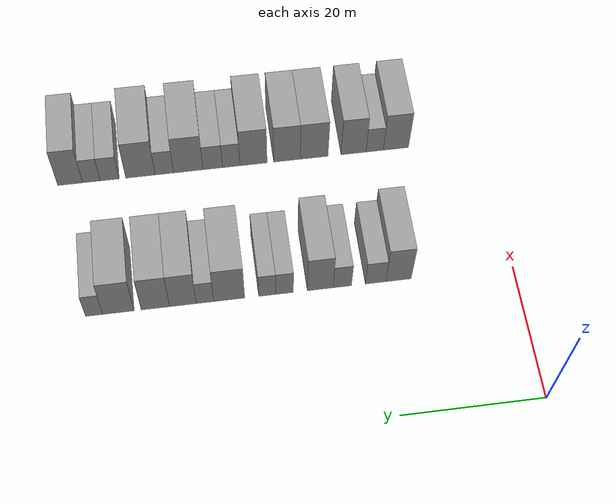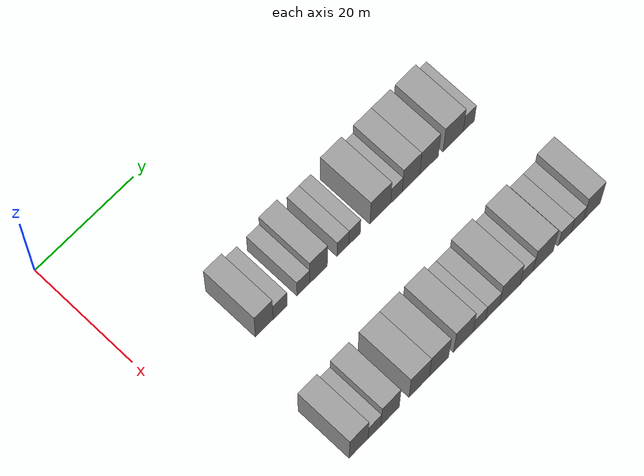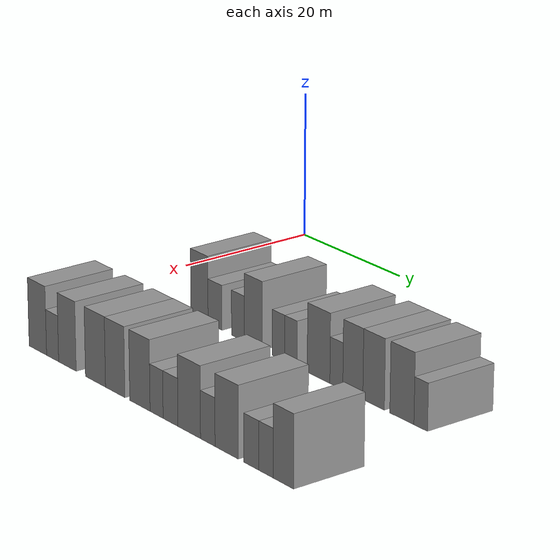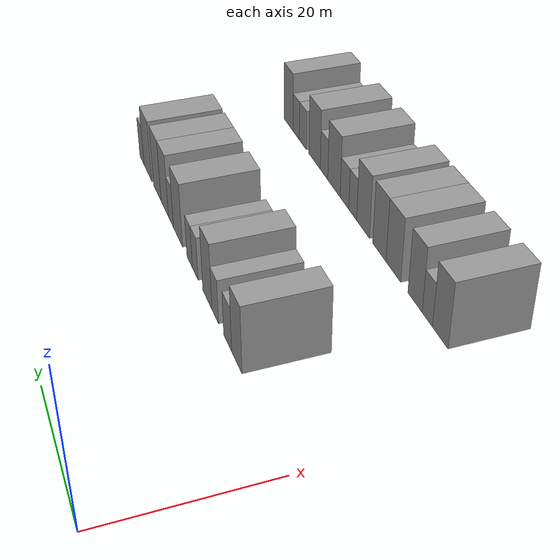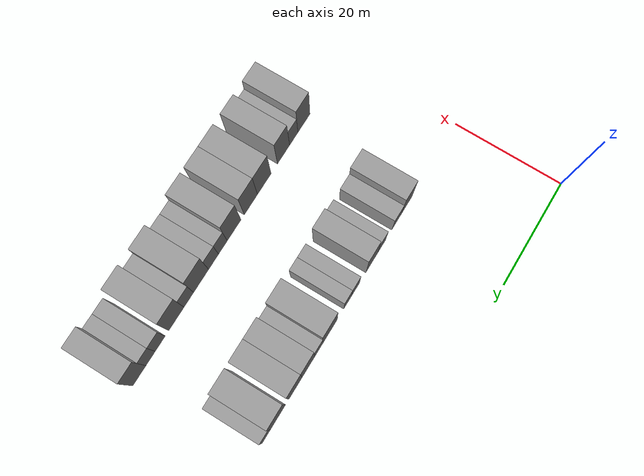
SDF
<sdf version="1.6">
 <world name="default">
  <model name="building_53">
   <static>1</static>
   <pose>25.0000 16.6781 0 0.000000 0.000000 0.000000</pose>
   <link name="link">
    <pose>0 0 4.50 0 0 0</pose>
    <collision name="collision"><geometry><box><size>10.0000 3.6595 9.0000</size></box></geometry></collision>
    <visual name="visual">
     <cast_shadows>0</cast_shadows>
     <geometry><box><size>10.0000 3.6595 9.0000</size></box></geometry>
     <material>
      <script>
       <uri>model://grey_wall/materials/scripts</uri>
       <uri>model://grey_wall/materials/textures</uri>
       <name>vrc/grey_wall</name>
      </script>
     </material>
    </visual>
   </link>
  </model>
  <model name="building_54">
   <static>1</static>
   <pose>25.0000 19.9686 0 0.000000 0.000000 0.000000</pose>
   <link name="link">
    <pose>0 0 3.00 0 0 0</pose>
    <collision name="collision"><geometry><box><size>10.0000 2.9214 6.0000</size></box></geometry></collision>
    <visual name="visual">
     <cast_shadows>0</cast_shadows>
     <geometry><box><size>10.0000 2.9214 6.0000</size></box></geometry>
     <material>
      <script>
       <uri>model://grey_wall/materials/scripts</uri>
       <uri>model://grey_wall/materials/textures</uri>
       <name>vrc/grey_wall</name>
      </script>
     </material>
    </visual>
   </link>
  </model>
  <model name="building_55">
   <static>1</static>
   <pose>25.0000 24.7430 0 0.000000 0.000000 0.000000</pose>
   <link name="link">
    <pose>0 0 3.00 0 0 0</pose>
    <collision name="collision"><geometry><box><size>10.0000 2.6274 6.0000</size></box></geometry></collision>
    <visual name="visual">
     <cast_shadows>0</cast_shadows>
     <geometry><box><size>10.0000 2.6274 6.0000</size></box></geometry>
     <material>
      <script>
       <uri>model://grey_wall/materials/scripts</uri>
       <uri>model://grey_wall/materials/textures</uri>
       <name>vrc/grey_wall</name>
      </script>
     </material>
    </visual>
   </link>
  </model>
  <model name="building_56">
   <static>1</static>
   <pose>25.0000 27.9003 0 0.000000 0.000000 0.000000</pose>
   <link name="link">
    <pose>0 0 4.50 0 0 0</pose>
    <collision name="collision"><geometry><box><size>10.0000 3.6870 9.0000</size></box></geometry></collision>
    <visual name="visual">
     <cast_shadows>0</cast_shadows>
     <geometry><box><size>10.0000 3.6870 9.0000</size></box></geometry>
     <material>
      <script>
       <uri>model://grey_wall/materials/scripts</uri>
       <uri>model://grey_wall/materials/textures</uri>
       <name>vrc/grey_wall</name>
      </script>
     </material>
    </visual>
   </link>
  </model>
  <model name="building_57">
   <static>1</static>
   <pose>25.0000 32.9931 0 0.000000 0.000000 0.000000</pose>
   <link name="link">
    <pose>0 0 3.00 0 0 0</pose>
    <collision name="collision"><geometry><box><size>10.0000 2.4987 6.0000</size></box></geometry></collision>
    <visual name="visual">
     <cast_shadows>0</cast_shadows>
     <geometry><box><size>10.0000 2.4987 6.0000</size></box></geometry>
     <material>
      <script>
       <uri>model://grey_wall/materials/scripts</uri>
       <uri>model://grey_wall/materials/textures</uri>
       <name>vrc/grey_wall</name>
      </script>
     </material>
    </visual>
   </link>
  </model>
  <model name="building_58">
   <static>1</static>
   <pose>25.0000 35.4506 0 0.000000 0.000000 0.000000</pose>
   <link name="link">
    <pose>0 0 3.00 0 0 0</pose>
    <collision name="collision"><geometry><box><size>10.0000 2.4164 6.0000</size></box></geometry></collision>
    <visual name="visual">
     <cast_shadows>0</cast_shadows>
     <geometry><box><size>10.0000 2.4164 6.0000</size></box></geometry>
     <material>
      <script>
       <uri>model://grey_wall/materials/scripts</uri>
       <uri>model://grey_wall/materials/textures</uri>
       <name>vrc/grey_wall</name>
      </script>
     </material>
    </visual>
   </link>
  </model>
  <model name="building_59">
   <static>1</static>
   <pose>25.0000 40.8483 0 0.000000 0.000000 0.000000</pose>
   <link name="link">
    <pose>0 0 4.50 0 0 0</pose>
    <collision name="collision"><geometry><box><size>10.0000 4.3790 9.0000</size></box></geometry></collision>
    <visual name="visual">
     <cast_shadows>0</cast_shadows>
     <geometry><box><size>10.0000 4.3790 9.0000</size></box></geometry>
     <material>
      <script>
       <uri>model://grey_wall/materials/scripts</uri>
       <uri>model://grey_wall/materials/textures</uri>
       <name>vrc/grey_wall</name>
      </script>
     </material>
    </visual>
   </link>
  </model>
  <model name="building_60">
   <static>1</static>
   <pose>25.0000 44.2669 0 0.000000 0.000000 0.000000</pose>
   <link name="link">
    <pose>0 0 3.00 0 0 0</pose>
    <collision name="collision"><geometry><box><size>10.0000 2.4583 6.0000</size></box></geometry></collision>
    <visual name="visual">
     <cast_shadows>0</cast_shadows>
     <geometry><box><size>10.0000 2.4583 6.0000</size></box></geometry>
     <material>
      <script>
       <uri>model://grey_wall/materials/scripts</uri>
       <uri>model://grey_wall/materials/textures</uri>
       <name>vrc/grey_wall</name>
      </script>
     </material>
    </visual>
   </link>
  </model>
  <model name="building_61">
   <static>1</static>
   <pose>25.0000 47.3763 0 0.000000 0.000000 0.000000</pose>
   <link name="link">
    <pose>0 0 4.50 0 0 0</pose>
    <collision name="collision"><geometry><box><size>10.0000 3.7605 9.0000</size></box></geometry></collision>
    <visual name="visual">
     <cast_shadows>0</cast_shadows>
     <geometry><box><size>10.0000 3.7605 9.0000</size></box></geometry>
     <material>
      <script>
       <uri>model://grey_wall/materials/scripts</uri>
       <uri>model://grey_wall/materials/textures</uri>
       <name>vrc/grey_wall</name>
      </script>
     </material>
    </visual>
   </link>
  </model>
  <model name="building_62">
   <static>1</static>
   <pose>25.0000 51.2478 0 0.000000 0.000000 0.000000</pose>
   <link name="link">
    <pose>0 0 4.50 0 0 0</pose>
    <collision name="collision"><geometry><box><size>10.0000 3.9825 9.0000</size></box></geometry></collision>
    <visual name="visual">
     <cast_shadows>0</cast_shadows>
     <geometry><box><size>10.0000 3.9825 9.0000</size></box></geometry>
     <material>
      <script>
       <uri>model://grey_wall/materials/scripts</uri>
       <uri>model://grey_wall/materials/textures</uri>
       <name>vrc/grey_wall</name>
      </script>
     </material>
    </visual>
   </link>
  </model>
  <model name="building_63">
   <static>1</static>
   <pose>25.0000 56.4181 0 0.000000 0.000000 0.000000</pose>
   <link name="link">
    <pose>0 0 4.50 0 0 0</pose>
    <collision name="collision"><geometry><box><size>10.0000 4.3580 9.0000</size></box></geometry></collision>
    <visual name="visual">
     <cast_shadows>0</cast_shadows>
     <geometry><box><size>10.0000 4.3580 9.0000</size></box></geometry>
     <material>
      <script>
       <uri>model://grey_wall/materials/scripts</uri>
       <uri>model://grey_wall/materials/textures</uri>
       <name>vrc/grey_wall</name>
      </script>
     </material>
    </visual>
   </link>
  </model>
  <model name="building_64">
   <static>1</static>
   <pose>25.0000 59.8069 0 0.000000 0.000000 0.000000</pose>
   <link name="link">
    <pose>0 0 3.00 0 0 0</pose>
    <collision name="collision"><geometry><box><size>10.0000 2.4197 6.0000</size></box></geometry></collision>
    <visual name="visual">
     <cast_shadows>0</cast_shadows>
     <geometry><box><size>10.0000 2.4197 6.0000</size></box></geometry>
     <material>
      <script>
       <uri>model://grey_wall/materials/scripts</uri>
       <uri>model://grey_wall/materials/textures</uri>
       <name>vrc/grey_wall</name>
      </script>
     </material>
    </visual>
   </link>
  </model>
  <model name="building_158">
   <static>1</static>
   <pose>47.0000 13.1570 0 0.000000 0.000000 0.000000</pose>
   <link name="link">
    <pose>0 0 4.50 0 0 0</pose>
    <collision name="collision"><geometry><box><size>10.0000 3.8757 9.0000</size></box></geometry></collision>
    <visual name="visual">
     <cast_shadows>0</cast_shadows>
     <geometry><box><size>10.0000 3.8757 9.0000</size></box></geometry>
     <material>
      <script>
       <uri>model://grey_wall/materials/scripts</uri>
       <uri>model://grey_wall/materials/textures</uri>
       <name>vrc/grey_wall</name>
      </script>
     </material>
    </visual>
   </link>
  </model>
  <model name="building_159">
   <static>1</static>
   <pose>47.0000 16.4181 0 0.000000 0.000000 0.000000</pose>
   <link name="link">
    <pose>0 0 3.00 0 0 0</pose>
    <collision name="collision"><geometry><box><size>10.0000 2.6464 6.0000</size></box></geometry></collision>
    <visual name="visual">
     <cast_shadows>0</cast_shadows>
     <geometry><box><size>10.0000 2.6464 6.0000</size></box></geometry>
     <material>
      <script>
       <uri>model://grey_wall/materials/scripts</uri>
       <uri>model://grey_wall/materials/textures</uri>
       <name>vrc/grey_wall</name>
      </script>
     </material>
    </visual>
   </link>
  </model>
  <model name="building_160">
   <static>1</static>
   <pose>47.0000 19.6465 0 0.000000 0.000000 0.000000</pose>
   <link name="link">
    <pose>0 0 4.50 0 0 0</pose>
    <collision name="collision"><geometry><box><size>10.0000 3.8105 9.0000</size></box></geometry></collision>
    <visual name="visual">
     <cast_shadows>0</cast_shadows>
     <geometry><box><size>10.0000 3.8105 9.0000</size></box></geometry>
     <material>
      <script>
       <uri>model://grey_wall/materials/scripts</uri>
       <uri>model://grey_wall/materials/textures</uri>
       <name>vrc/grey_wall</name>
      </script>
     </material>
    </visual>
   </link>
  </model>
  <model name="building_161">
   <static>1</static>
   <pose>47.0000 25.6698 0 0.000000 0.000000 0.000000</pose>
   <link name="link">
    <pose>0 0 4.50 0 0 0</pose>
    <collision name="collision"><geometry><box><size>10.0000 4.2360 9.0000</size></box></geometry></collision>
    <visual name="visual">
     <cast_shadows>0</cast_shadows>
     <geometry><box><size>10.0000 4.2360 9.0000</size></box></geometry>
     <material>
      <script>
       <uri>model://grey_wall/materials/scripts</uri>
       <uri>model://grey_wall/materials/textures</uri>
       <name>vrc/grey_wall</name>
      </script>
     </material>
    </visual>
   </link>
  </model>
  <model name="building_162">
   <static>1</static>
   <pose>47.0000 29.8043 0 0.000000 0.000000 0.000000</pose>
   <link name="link">
    <pose>0 0 4.50 0 0 0</pose>
    <collision name="collision"><geometry><box><size>10.0000 4.0331 9.0000</size></box></geometry></collision>
    <visual name="visual">
     <cast_shadows>0</cast_shadows>
     <geometry><box><size>10.0000 4.0331 9.0000</size></box></geometry>
     <material>
      <script>
       <uri>model://grey_wall/materials/scripts</uri>
       <uri>model://grey_wall/materials/textures</uri>
       <name>vrc/grey_wall</name>
      </script>
     </material>
    </visual>
   </link>
  </model>
  <model name="building_163">
   <static>1</static>
   <pose>47.0000 34.8874 0 0.000000 0.000000 0.000000</pose>
   <link name="link">
    <pose>0 0 4.50 0 0 0</pose>
    <collision name="collision"><geometry><box><size>10.0000 4.1330 9.0000</size></box></geometry></collision>
    <visual name="visual">
     <cast_shadows>0</cast_shadows>
     <geometry><box><size>10.0000 4.1330 9.0000</size></box></geometry>
     <material>
      <script>
       <uri>model://grey_wall/materials/scripts</uri>
       <uri>model://grey_wall/materials/textures</uri>
       <name>vrc/grey_wall</name>
      </script>
     </material>
    </visual>
   </link>
  </model>
  <model name="building_164">
   <static>1</static>
   <pose>47.0000 38.2609 0 0.000000 0.000000 0.000000</pose>
   <link name="link">
    <pose>0 0 3.00 0 0 0</pose>
    <collision name="collision"><geometry><box><size>10.0000 2.6140 6.0000</size></box></geometry></collision>
    <visual name="visual">
     <cast_shadows>0</cast_shadows>
     <geometry><box><size>10.0000 2.6140 6.0000</size></box></geometry>
     <material>
      <script>
       <uri>model://grey_wall/materials/scripts</uri>
       <uri>model://grey_wall/materials/textures</uri>
       <name>vrc/grey_wall</name>
      </script>
     </material>
    </visual>
   </link>
  </model>
  <model name="building_165">
   <static>1</static>
   <pose>47.0000 41.0389 0 0.000000 0.000000 0.000000</pose>
   <link name="link">
    <pose>0 0 3.00 0 0 0</pose>
    <collision name="collision"><geometry><box><size>10.0000 2.9420 6.0000</size></box></geometry></collision>
    <visual name="visual">
     <cast_shadows>0</cast_shadows>
     <geometry><box><size>10.0000 2.9420 6.0000</size></box></geometry>
     <material>
      <script>
       <uri>model://grey_wall/materials/scripts</uri>
       <uri>model://grey_wall/materials/textures</uri>
       <name>vrc/grey_wall</name>
      </script>
     </material>
    </visual>
   </link>
  </model>
  <model name="building_166">
   <static>1</static>
   <pose>47.0000 44.7114 0 0.000000 0.000000 0.000000</pose>
   <link name="link">
    <pose>0 0 4.50 0 0 0</pose>
    <collision name="collision"><geometry><box><size>10.0000 4.4029 9.0000</size></box></geometry></collision>
    <visual name="visual">
     <cast_shadows>0</cast_shadows>
     <geometry><box><size>10.0000 4.4029 9.0000</size></box></geometry>
     <material>
      <script>
       <uri>model://grey_wall/materials/scripts</uri>
       <uri>model://grey_wall/materials/textures</uri>
       <name>vrc/grey_wall</name>
      </script>
     </material>
    </visual>
   </link>
  </model>
  <model name="building_167">
   <static>1</static>
   <pose>47.0000 48.3075 0 0.000000 0.000000 0.000000</pose>
   <link name="link">
    <pose>0 0 3.00 0 0 0</pose>
    <collision name="collision"><geometry><box><size>10.0000 2.7893 6.0000</size></box></geometry></collision>
    <visual name="visual">
     <cast_shadows>0</cast_shadows>
     <geometry><box><size>10.0000 2.7893 6.0000</size></box></geometry>
     <material>
      <script>
       <uri>model://grey_wall/materials/scripts</uri>
       <uri>model://grey_wall/materials/textures</uri>
       <name>vrc/grey_wall</name>
      </script>
     </material>
    </visual>
   </link>
  </model>
  <model name="building_168">
   <static>1</static>
   <pose>47.0000 51.8959 0 0.000000 0.000000 0.000000</pose>
   <link name="link">
    <pose>0 0 4.50 0 0 0</pose>
    <collision name="collision"><geometry><box><size>10.0000 4.3875 9.0000</size></box></geometry></collision>
    <visual name="visual">
     <cast_shadows>0</cast_shadows>
     <geometry><box><size>10.0000 4.3875 9.0000</size></box></geometry>
     <material>
      <script>
       <uri>model://grey_wall/materials/scripts</uri>
       <uri>model://grey_wall/materials/textures</uri>
       <name>vrc/grey_wall</name>
      </script>
     </material>
    </visual>
   </link>
  </model>
  <model name="building_169">
   <static>1</static>
   <pose>47.0000 56.5019 0 0.000000 0.000000 0.000000</pose>
   <link name="link">
    <pose>0 0 3.00 0 0 0</pose>
    <collision name="collision"><geometry><box><size>10.0000 2.8246 6.0000</size></box></geometry></collision>
    <visual name="visual">
     <cast_shadows>0</cast_shadows>
     <geometry><box><size>10.0000 2.8246 6.0000</size></box></geometry>
     <material>
      <script>
       <uri>model://grey_wall/materials/scripts</uri>
       <uri>model://grey_wall/materials/textures</uri>
       <name>vrc/grey_wall</name>
      </script>
     </material>
    </visual>
   </link>
  </model>
  <model name="building_170">
   <static>1</static>
   <pose>47.0000 59.2220 0 0.000000 0.000000 0.000000</pose>
   <link name="link">
    <pose>0 0 3.00 0 0 0</pose>
    <collision name="collision"><geometry><box><size>10.0000 2.6156 6.0000</size></box></geometry></collision>
    <visual name="visual">
     <cast_shadows>0</cast_shadows>
     <geometry><box><size>10.0000 2.6156 6.0000</size></box></geometry>
     <material>
      <script>
       <uri>model://grey_wall/materials/scripts</uri>
       <uri>model://grey_wall/materials/textures</uri>
       <name>vrc/grey_wall</name>
      </script>
     </material>
    </visual>
   </link>
  </model>
  <model name="building_171">
   <static>1</static>
   <pose>47.0000 62.3750 0 0.000000 0.000000 0.000000</pose>
   <link name="link">
    <pose>0 0 4.50 0 0 0</pose>
    <collision name="collision"><geometry><box><size>10.0000 3.6903 9.0000</size></box></geometry></collision>
    <visual name="visual">
     <cast_shadows>0</cast_shadows>
     <geometry><box><size>10.0000 3.6903 9.0000</size></box></geometry>
     <material>
      <script>
       <uri>model://grey_wall/materials/scripts</uri>
       <uri>model://grey_wall/materials/textures</uri>
       <name>vrc/grey_wall</name>
      </script>
     </material>
    </visual>
   </link>
  </model>
 </world>
</sdf>
